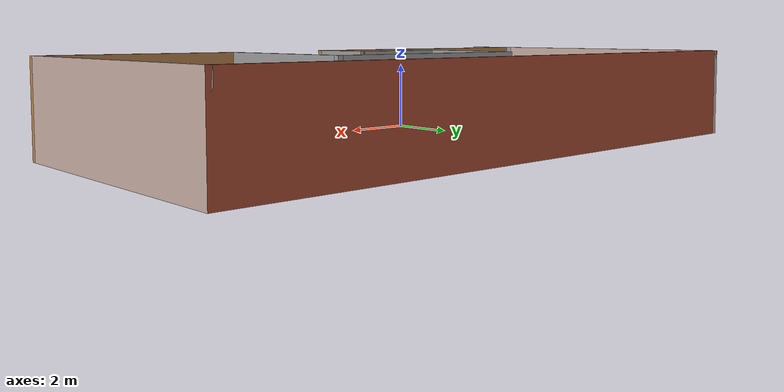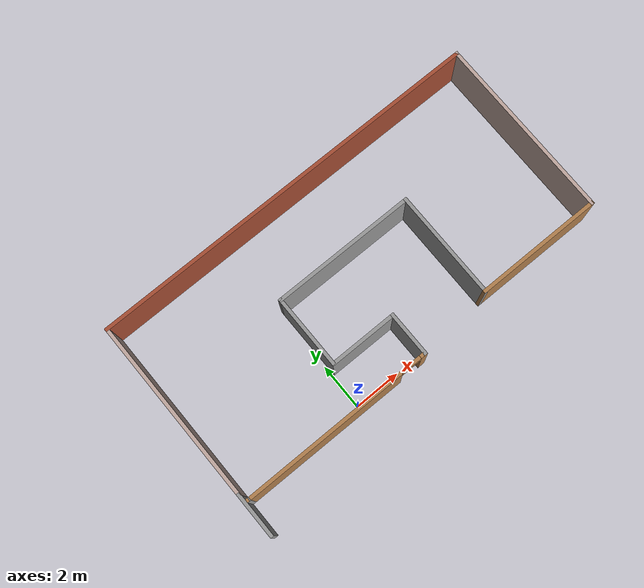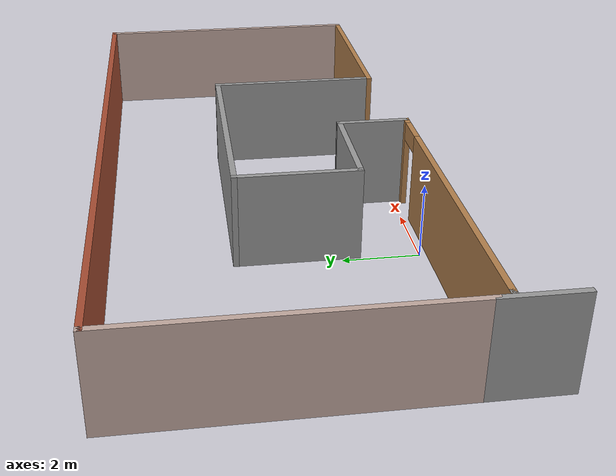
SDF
<?xml version='1.0'?>
<sdf version='1.6'>
  <model name='MyBuilding'>
    <pose frame=''>3.04952 3.09019 0 0 -0 0</pose>
    <link name='Wall_0'>
      <collision name='Wall_0_Collision'>
        <geometry>
          <box>
            <size>8 0.15 2.5</size>
          </box>
        </geometry>
        <pose frame=''>0 0 1.25 0 -0 0</pose>
      </collision>
      <visual name='Wall_0_Visual'>
        <pose frame=''>0 0 1.25 0 -0 0</pose>
        <geometry>
          <box>
            <size>8 0.15 2.5</size>
          </box>
        </geometry>
        <material>
          <script>
            <uri>file://media/materials/scripts/gazebo.material</uri>
            <name>Gazebo/Grey</name>
          </script>
          <ambient>0.760784 0.662745 0.627451 1</ambient>
        </material>
        <meta>
          <layer>0</layer>
        </meta>
      </visual>
      <pose frame=''>-8.55 0.925 0 0 -0 1.5708</pose>
    </link>
    <link name='Wall_1'>
      <collision name='Wall_1_Collision'>
        <geometry>
          <box>
            <size>17.25 0.15 2.5</size>
          </box>
        </geometry>
        <pose frame=''>0 0 1.25 0 -0 0</pose>
      </collision>
      <visual name='Wall_1_Visual'>
        <pose frame=''>0 0 1.25 0 -0 0</pose>
        <geometry>
          <box>
            <size>17.25 0.15 2.5</size>
          </box>
        </geometry>
        <material>
          <script>
            <uri>file://media/materials/scripts/gazebo.material</uri>
            <name>Gazebo/Bricks</name>
          </script>
          <ambient>1 1 1 1</ambient>
        </material>
        <meta>
          <layer>0</layer>
        </meta>
      </visual>
      <pose frame=''>-0 4.85 0 0 -0 0</pose>
    </link>
    <link name='Wall_10'>
      <collision name='Wall_10_Collision'>
        <geometry>
          <box>
            <size>0.15 0.15 2.5</size>
          </box>
        </geometry>
        <pose frame=''>0 0 1.25 0 -0 0</pose>
      </collision>
      <visual name='Wall_10_Visual'>
        <pose frame=''>0 0 1.25 0 -0 0</pose>
        <geometry>
          <box>
            <size>0.15 0.15 2.5</size>
          </box>
        </geometry>
        <material>
          <script>
            <uri>file://media/materials/scripts/gazebo.material</uri>
            <name>Gazebo/Grey</name>
          </script>
          <ambient>1 1 1 1</ambient>
        </material>
        <meta>
          <layer>0</layer>
        </meta>
      </visual>
      <pose frame=''>-8.4 -3.35 0 0 -0 0</pose>
    </link>
    <link name='Wall_12'>
      <collision name='Wall_12_Collision'>
        <geometry>
          <box>
            <size>2 0.15 2.5</size>
          </box>
        </geometry>
        <pose frame=''>0 0 1.25 0 -0 0</pose>
      </collision>
      <visual name='Wall_12_Visual'>
        <pose frame=''>0 0 1.25 0 -0 0</pose>
        <geometry>
          <box>
            <size>2 0.15 2.5</size>
          </box>
        </geometry>
        <material>
          <script>
            <uri>file://media/materials/scripts/gazebo.material</uri>
            <name>Gazebo/Grey</name>
          </script>
          <ambient>1 1 1 1</ambient>
        </material>
        <meta>
          <layer>0</layer>
        </meta>
      </visual>
      <pose frame=''>-8.55 -3.925 0 0 -0 -1.5708</pose>
    </link>
    <link name='Wall_2'>
      <collision name='Wall_2_Collision'>
        <geometry>
          <box>
            <size>8 0.15 2.5</size>
          </box>
        </geometry>
        <pose frame=''>0 0 1.25 0 -0 0</pose>
      </collision>
      <visual name='Wall_2_Visual'>
        <pose frame=''>0 0 1.25 0 -0 0</pose>
        <geometry>
          <box>
            <size>8 0.15 2.5</size>
          </box>
        </geometry>
        <material>
          <script>
            <uri>file://media/materials/scripts/gazebo.material</uri>
            <name>Gazebo/Grey</name>
          </script>
          <ambient>0.760784 0.662745 0.627451 1</ambient>
        </material>
        <meta>
          <layer>0</layer>
        </meta>
      </visual>
      <pose frame=''>8.55 0.925 0 0 -0 -1.5708</pose>
    </link>
    <link name='Wall_3'>
      <collision name='Wall_3_Collision'>
        <geometry>
          <box>
            <size>5.5 0.15 2.5</size>
          </box>
        </geometry>
        <pose frame=''>0 0 1.25 0 -0 0</pose>
      </collision>
      <visual name='Wall_3_Visual'>
        <pose frame=''>0 0 1.25 0 -0 0</pose>
        <geometry>
          <box>
            <size>5.5 0.15 2.5</size>
          </box>
        </geometry>
        <material>
          <script>
            <uri>file://media/materials/scripts/gazebo.material</uri>
            <name>Gazebo/Wood</name>
          </script>
          <ambient>1 1 1 1</ambient>
        </material>
        <meta>
          <layer>0</layer>
        </meta>
      </visual>
      <pose frame=''>5.875 -3 0 0 -0 3.14159</pose>
    </link>
    <link name='Wall_4'>
      <collision name='Wall_4_Collision'>
        <geometry>
          <box>
            <size>4.75 0.15 2.5</size>
          </box>
        </geometry>
        <pose frame=''>0 0 1.25 0 -0 0</pose>
      </collision>
      <visual name='Wall_4_Visual'>
        <pose frame=''>0 0 1.25 0 -0 0</pose>
        <geometry>
          <box>
            <size>4.75 0.15 2.5</size>
          </box>
        </geometry>
        <material>
          <script>
            <uri>file://media/materials/scripts/gazebo.material</uri>
            <name>Gazebo/Grey</name>
          </script>
          <ambient>1 1 1 1</ambient>
        </material>
        <meta>
          <layer>0</layer>
        </meta>
      </visual>
      <pose frame=''>3.2 -0.7 0 0 -0 1.5708</pose>
    </link>
    <link name='Wall_5'>
      <collision name='Wall_5_Collision'>
        <geometry>
          <box>
            <size>6.25 0.15 2.5</size>
          </box>
        </geometry>
        <pose frame=''>0 0 1.25 0 -0 0</pose>
      </collision>
      <visual name='Wall_5_Visual'>
        <pose frame=''>0 0 1.25 0 -0 0</pose>
        <geometry>
          <box>
            <size>6.25 0.15 2.5</size>
          </box>
        </geometry>
        <material>
          <script>
            <uri>file://media/materials/scripts/gazebo.material</uri>
            <name>Gazebo/Grey</name>
          </script>
          <ambient>1 1 1 1</ambient>
        </material>
        <meta>
          <layer>0</layer>
        </meta>
      </visual>
      <pose frame=''>0.15 1.6 0 0 -0 3.14159</pose>
    </link>
    <link name='Wall_6'>
      <collision name='Wall_6_Collision'>
        <geometry>
          <box>
            <size>3.25 0.15 2.5</size>
          </box>
        </geometry>
        <pose frame=''>0 0 1.25 0 -0 0</pose>
      </collision>
      <visual name='Wall_6_Visual'>
        <pose frame=''>0 0 1.25 0 -0 0</pose>
        <geometry>
          <box>
            <size>3.25 0.15 2.5</size>
          </box>
        </geometry>
        <material>
          <script>
            <uri>file://media/materials/scripts/gazebo.material</uri>
            <name>Gazebo/Grey</name>
          </script>
          <ambient>1 1 1 1</ambient>
        </material>
        <meta>
          <layer>0</layer>
        </meta>
      </visual>
      <pose frame=''>-2.9 0.05 0 0 -0 -1.5708</pose>
    </link>
    <link name='Wall_7'>
      <collision name='Wall_7_Collision'>
        <geometry>
          <box>
            <size>3 0.15 2.5</size>
          </box>
        </geometry>
        <pose frame=''>0 0 1.25 0 -0 0</pose>
      </collision>
      <visual name='Wall_7_Visual'>
        <pose frame=''>0 0 1.25 0 -0 0</pose>
        <geometry>
          <box>
            <size>3 0.15 2.5</size>
          </box>
        </geometry>
        <material>
          <script>
            <uri>file://media/materials/scripts/gazebo.material</uri>
            <name>Gazebo/Grey</name>
          </script>
          <ambient>1 1 1 1</ambient>
        </material>
        <meta>
          <layer>0</layer>
        </meta>
      </visual>
      <pose frame=''>-1.475 -1.5 0 0 -0 0</pose>
    </link>
    <link name='Wall_8'>
      <collision name='Wall_8_Collision'>
        <geometry>
          <box>
            <size>2 0.15 2.5</size>
          </box>
        </geometry>
        <pose frame=''>0 0 1.25 0 -0 0</pose>
      </collision>
      <visual name='Wall_8_Visual'>
        <pose frame=''>0 0 1.25 0 -0 0</pose>
        <geometry>
          <box>
            <size>2 0.15 2.5</size>
          </box>
        </geometry>
        <material>
          <script>
            <uri>file://media/materials/scripts/gazebo.material</uri>
            <name>Gazebo/Grey</name>
          </script>
          <ambient>1 1 1 1</ambient>
        </material>
        <meta>
          <layer>0</layer>
        </meta>
      </visual>
      <pose frame=''>-0.05 -2.425 0 0 -0 -1.5708</pose>
    </link>
    <link name='Wall_9'>
      <pose frame=''>-4.225 -3.35 0 0 -0 3.14159</pose>
      <visual name='Wall_9_Visual_0'>
        <pose frame=''>-4.09558 0 1.25 0 -0 0</pose>
        <geometry>
          <box>
            <size>0.308839 0.15 2.5</size>
          </box>
        </geometry>
        <material>
          <script>
            <uri>file://media/materials/scripts/gazebo.material</uri>
            <name>Gazebo/Wood</name>
          </script>
          <ambient>1 1 1 1</ambient>
        </material>
        <meta>
          <layer>0</layer>
        </meta>
      </visual>
      <collision name='Wall_9_Collision_0'>
        <geometry>
          <box>
            <size>0.308839 0.15 2.5</size>
          </box>
        </geometry>
        <pose frame=''>-4.09558 0 1.25 0 -0 0</pose>
      </collision>
      <visual name='Wall_9_Visual_1'>
        <pose frame=''>0.60442 0 1.25 0 -0 0</pose>
        <geometry>
          <box>
            <size>7.29116 0.15 2.5</size>
          </box>
        </geometry>
        <material>
          <script>
            <uri>file://media/materials/scripts/gazebo.material</uri>
            <name>Gazebo/Wood</name>
          </script>
          <ambient>1 1 1 1</ambient>
        </material>
        <meta>
          <layer>0</layer>
        </meta>
      </visual>
      <collision name='Wall_9_Collision_1'>
        <geometry>
          <box>
            <size>7.29116 0.15 2.5</size>
          </box>
        </geometry>
        <pose frame=''>0.60442 0 1.25 0 -0 0</pose>
      </collision>
      <visual name='Wall_9_Visual_2'>
        <pose frame=''>-3.49116 0 2.25 0 -0 0</pose>
        <geometry>
          <box>
            <size>0.9 0.15 0.5</size>
          </box>
        </geometry>
        <material>
          <script>
            <uri>file://media/materials/scripts/gazebo.material</uri>
            <name>Gazebo/Wood</name>
          </script>
          <ambient>1 1 1 1</ambient>
        </material>
        <meta>
          <layer>0</layer>
        </meta>
      </visual>
      <collision name='Wall_9_Collision_2'>
        <geometry>
          <box>
            <size>0.9 0.15 0.5</size>
          </box>
        </geometry>
        <pose frame=''>-3.49116 0 2.25 0 -0 0</pose>
      </collision>
    </link>
    <static>1</static>
  </model>
</sdf>
